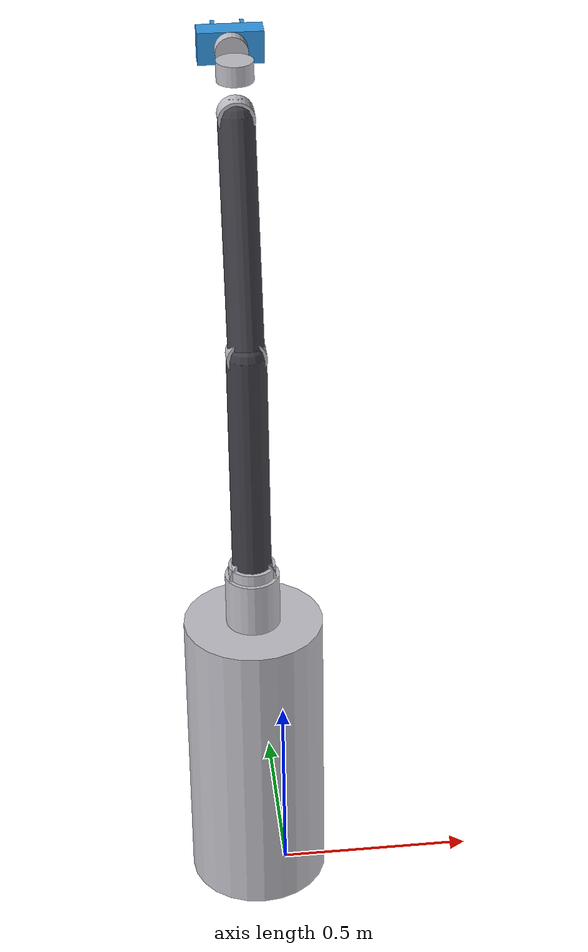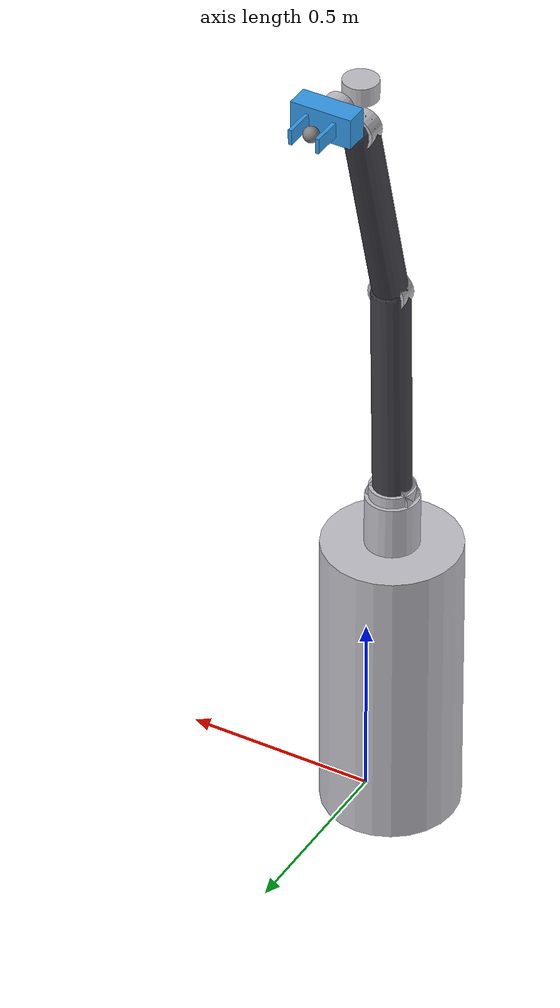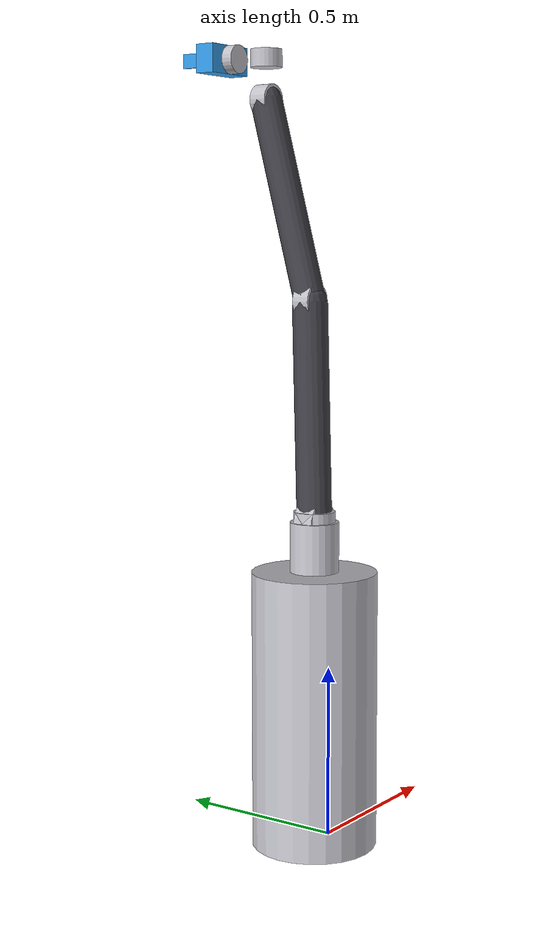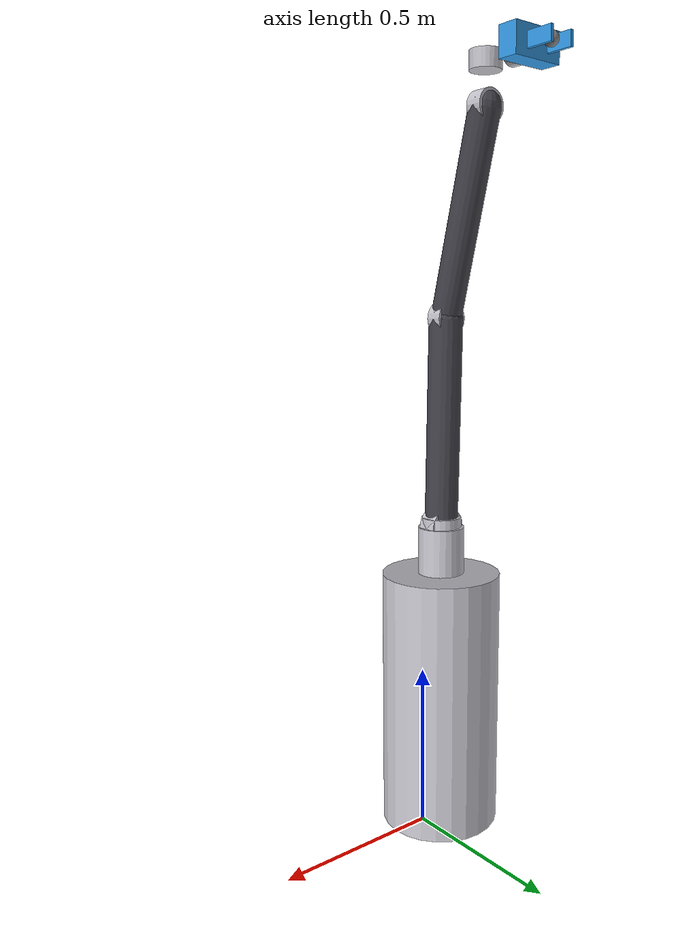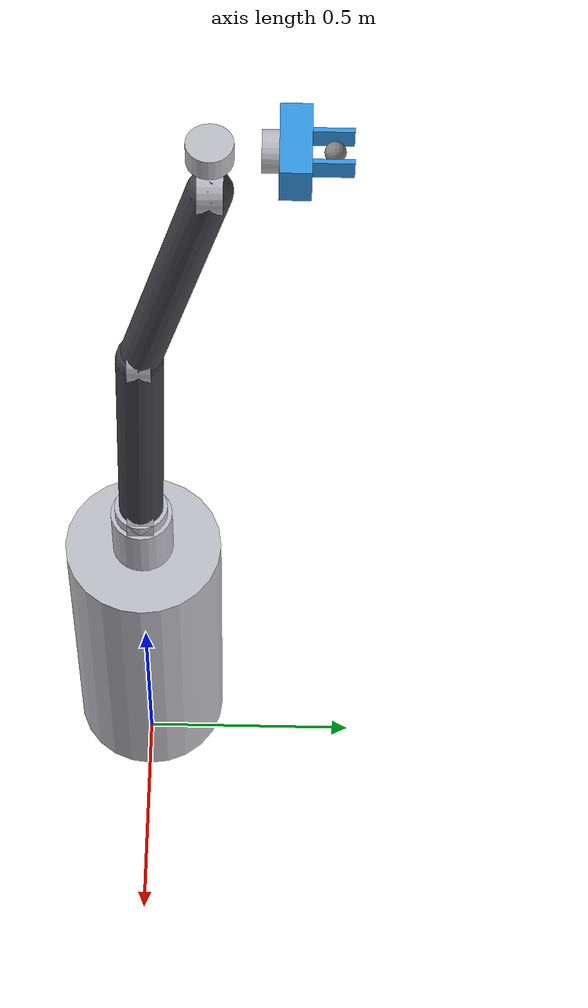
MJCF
<!--
  UR5e + 二指夹爪 MJCF
  按用户提供的连杆坐标系与 quaternion 参数构建。
  已补充缺失的连杆几何：upper_arm（大臂）、forearm（小臂）胶囊，
  并补全 body 闭合标签。
-->
<mujoco model="ur5e_gripper">
  <compiler angle="radian" coordinate="local" autolimits="true"/>

  <asset>
    <material name="arm_mat"  rgba="0.75 0.75 0.78 1"/>
    <material name="link_mat" rgba="0.25 0.25 0.28 1"/>
    <material name="grip_mat" rgba="0.2 0.6 0.9 1"/>
  </asset>

  <default>
    <joint damping="0.5" frictionloss="0.01"/>
    <geom contype="1" conaffinity="1"/>
  </default>

  <worldbody>
    <!-- 机械臂底座 -->
    <body name="base" pos="-0.0723956 0 0.7798497">
      <geom name="base" type="cylinder" size="0.07 0.08175" pos="0 0 0.08175" material="arm_mat" contype="0" conaffinity="0"/>
      <!-- 安装底座：高 0.8m，从 base 原点向下延伸，底部落在桌面 -->
      <geom name="pedestal" type="cylinder" size="0.18 0.4" pos="0 0 -0.38" material="arm_mat" contype="0" conaffinity="0"/>

      <!-- ===== 关节1: shoulder_pan  d1=0.1635 ===== (a0=0,α0=0 省略 offset1) -->
      <body name="shoulder_Link" pos="0 0 0.1635">
        <inertial pos="0 0 0" mass="3.9912" diaginertia="0.01 0.02 0.02"/>
        <joint name="shoulder_pan_joint" type="hinge" axis="0 0 -1" range="-6.28 6.28"/>
        <geom name="shoulder_pan" type="cylinder" size="0.06 0.03" material="arm_mat" contype="0" conaffinity="0"/>

        <!-- ===== 关节2: shoulder_lift ===== -->
        <body name="upper_arm_Lift" pos="0 0 0" quat="0.49998 -0.5 -0.5 -0.500002">
          <inertial pos="0 0 0" mass="13.9447" diaginertia="0.04 0.04 0.01"/>
          <joint name="shoulder_lift_joint" type="hinge" axis="0 0 1" range="-6.28 6.28"/>
          <geom name="shoulder_lift" type="cylinder" size="0.06 0.03" material="arm_mat" contype="0" conaffinity="0"/>
          <!-- 补充：大臂连杆几何，连接 upper_arm_Lift 原点 -> forearm_Link 原点 -->
          <geom name="upper_arm" type="capsule" fromto="0 0 0 0.6225 0 0.0155" size="0.05" material="link_mat" contype="0" conaffinity="0"/>

          <!-- ===== 关节3: elbow  d3=0.0155 ===== -->
          <body name="forearm_Link" pos="0.6225 0 0.0155">
            <inertial pos="0 0 0" mass="3.6632" diaginertia="0.02 0.02 0.005"/>
            <joint name="elbow_joint" type="hinge" axis="0 0 1" range="-3.14 3.14"/>
            <geom name="elbow" type="cylinder" size="0.05 0.025" material="arm_mat" contype="0" conaffinity="0"/>
            <!-- 补充：小臂连杆几何，连接 forearm_Link 原点 -> wrist_1_Link 原点 -->
            <geom name="forearm" type="capsule" fromto="0 0 0 0.558 0 0.149" size="0.045" material="link_mat" contype="0" conaffinity="0"/>

            <!-- ===== 关节4: wrist_1  d4=0.149 ===== -->
            <body name="wrist_1_Link" pos="0.558 0 0.149" quat="0.707105 1.18758e-05 1.18759e-05 0.707108">
              <inertial pos="0 0 0" mass="1.226" diaginertia="0.005 0.005 0.002"/>
              <joint name="wrist_1_joint" type="hinge" axis="0 0 1" range="-6.28 6.28"/>
              <geom name="wrist_1" type="cylinder" size="0.045 0.025" material="arm_mat" contype="0" conaffinity="0"/>

              <!-- ===== 关节5: wrist_2  d5=-0.115 ===== -->
              <body name="wrist_2_Link" pos="0 -0.115 0" quat="0.707104 0.707072 0.000768628 -0.000775693">
                <inertial pos="0 0 0" mass="1.1122" diaginertia="0.005 0.005 0.002"/>
                <joint name="wrist_2_joint" type="hinge" axis="0 0 -1" range="-6.28 6.28"/>
                <geom name="wrist_2" type="cylinder" size="0.045 0.025" material="arm_mat" contype="0" conaffinity="0"/>

                <!-- ===== 关节6: wrist_3  d6=0.115 ===== -->
                <body name="wrist_3_Link" pos="0.0001986 0.115 0.0047139" quat="0.707494 -0.706719 3.54596e-06 3.54208e-06">
                  <inertial pos="0 0 0" mass="1.6897" diaginertia="0.002 0.002 0.001"/>
                  <joint name="wrist_3_joint" type="hinge" axis="0 0 -1" range="-6.28 6.28"/>
                  <geom name="wrist_3" type="cylinder" size="0.04 0.02" material="arm_mat" contype="0" conaffinity="0"/>

                  <!-- 末端执行器参考点 = DH frame 6 原点 (法兰中心) -->
                  <site name="attachment_site" pos="0 0 0" rgba="1 0 0 1"/>

                  <body name="tcp_link" quat="1 0 0 0" pos="0 0 0.35">
                    <geom name="tcp_link_geom" type="capsule" fromto="0 0 -0.5 0 0 0.5" size="0.005" rgba="1 0.2 0.2 0" contype="0" conaffinity="0"/>
                  </body>

                  <!-- offset6: a5=0, α5=90° (末端坐标系) -->
                  <body name="finger_base" pos="0 0 0" quat="0 0.7071068 0.7071068 0">
                    <inertial pos="0 0 0" mass="1.5714" diaginertia="0.001 0.001 0.001"/>

                    <!-- ===== 二指平行夹爪 ===== -->
                    <body name="carry_shell" pos="0 0 -0.042">
                      <geom name="carry_shell" type="box" size="0.04 0.08 0.03" pos="0 0 0.00" material="grip_mat"/>
                      <site name="ee_link" pos="0 0 -0.072" quat="0 -0.7071068 -0.7071068 0" size="0.02"/>
                      <camera name="cam_eih" pos="0 0 -0.035" quat="1 0 0 1" fovy="60"/>
                      <body name="finger_left" pos="0 -0.0160500 -0.0874122">
                        <joint name="ll_grasp_joint" type="slide" axis="0 1 0" range="-0.025 0.01"/>
                        <geom name="finger_left" type="box" size="0.02 0.005 0.04" pos="0 -0.02 0.02" material="grip_mat"/>
                      </body>
                      <body name="finger_right" pos="0 0.0160500 -0.0874122">
                        <joint name="rl_grasp_joint" type="slide" axis="0 1 0" range="-0.01 0.025"/>
                        <geom name="finger_right" type="box" size="0.02 0.005 0.04" pos="0 0.02 0.02" material="grip_mat"/>
                      </body>
                    </body>
                  </body>
                </body>
              </body>
            </body>
          </body>
        </body>
      </body>
    </body>
  </worldbody>

  <!-- 执行器：position 控制模式（6 臂关节 + 1 夹爪）。
       dampratio=1 临界阻尼，kp 增大以减小跟踪滞后。
       力矩模式见 ur5e_gripper_torque.xml。 -->
  <actuator>
    <position joint="shoulder_pan_joint"  name="act_shoulder_pan"  ctrlrange="-6.28 6.28" forcerange="-500 500" kp="1000" dampratio="1"/>
    <position joint="shoulder_lift_joint"       name="act_shoulder_lift"       ctrlrange="-6.28 6.28" forcerange="-500 500" kp="1000" dampratio="1"/>
    <position joint="elbow_joint"         name="act_elbow"         ctrlrange="-3.14 3.14" forcerange="-500 500" kp="1000" dampratio="1"/>
    <position joint="wrist_1_joint"       name="act_wrist_1"       ctrlrange="-6.28 6.28" forcerange="-56 56"   kp="300"  dampratio="1"/>
    <position joint="wrist_2_joint"       name="act_wrist_2"       ctrlrange="-6.28 6.28" forcerange="-56 56"   kp="300"  dampratio="1"/>
    <position joint="wrist_3_joint"       name="act_wrist_3"       ctrlrange="-6.28 6.28" forcerange="-56 56"   kp="300"  dampratio="1"/>
    <position joint="ll_grasp_joint"      name="act_grasp"         ctrlrange="-0.025 0.01"      forcerange="-300 300" kp="100"  kv="10"/>
  </actuator>

  <equality>
    <joint joint1="rl_grasp_joint" joint2="ll_grasp_joint" polycoef="0 -1"/>
  </equality>
</mujoco>
